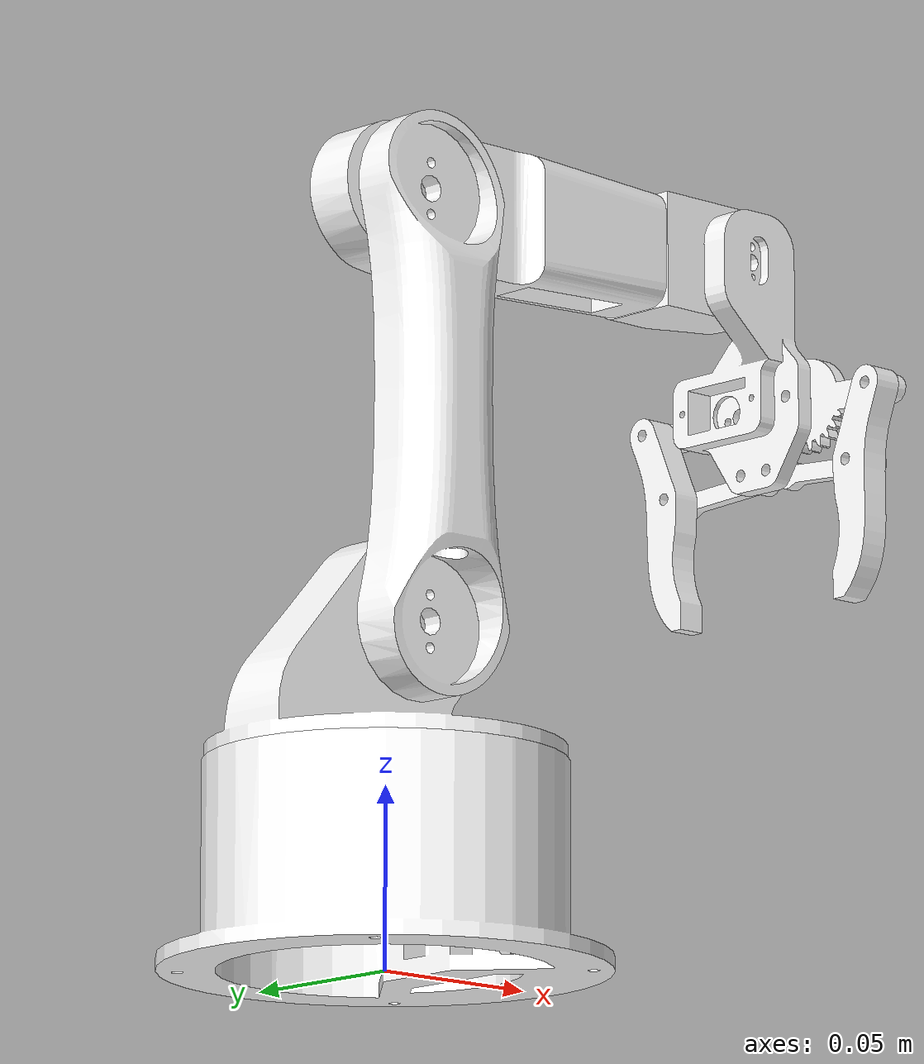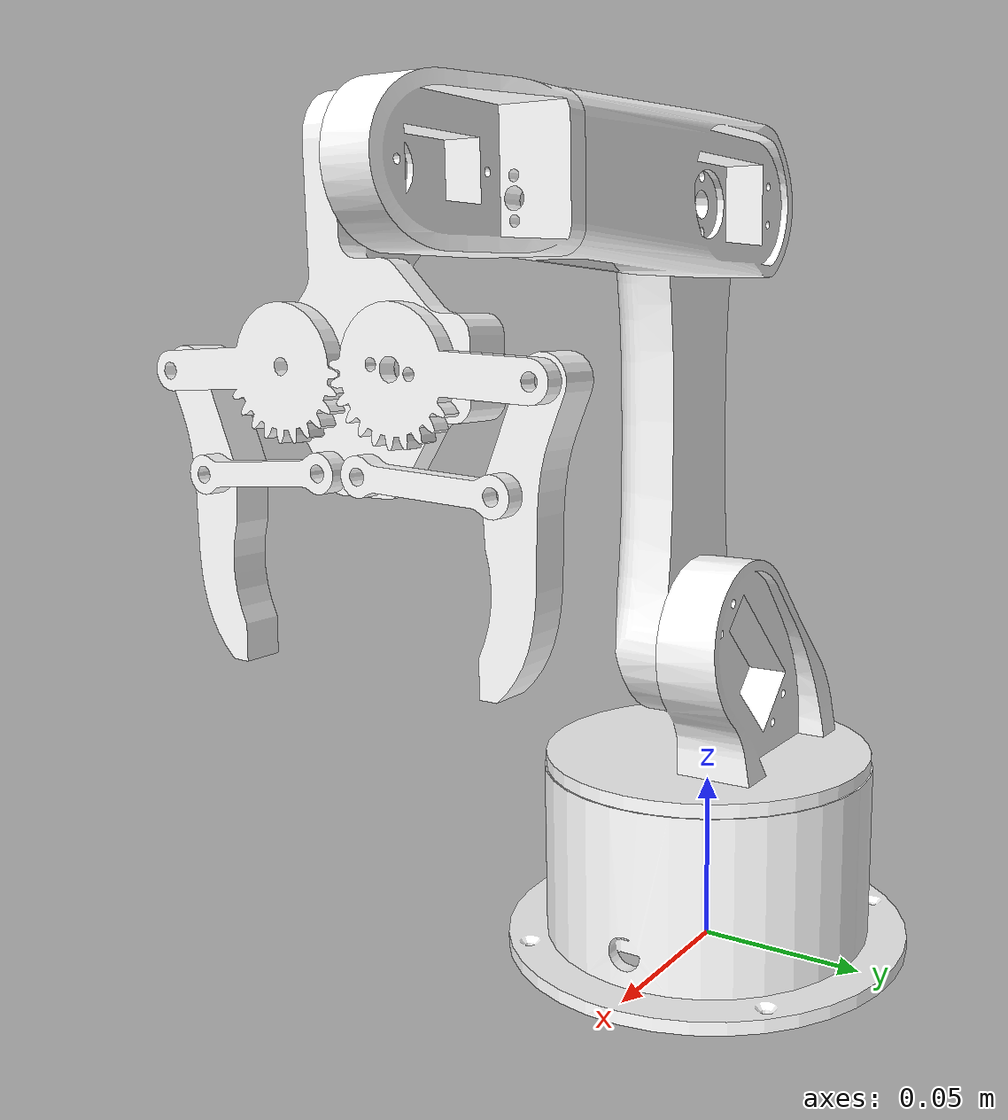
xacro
<?xml version="1.0" encoding="utf-8"?>

<robot
  name="mocha" xmlns:xacro="http://ros.org/wiki/xacro">
  <link name="world"/>
    <joint name="base_joint" type="fixed">
    <parent link="world"/>
    <child link="base_link"/>
    <origin rpy="0 0 0" xyz="0.0 0.0 0.0"/>
    </joint>
  <link
    name="base_link">
    <inertial>
      <origin
        xyz="0.000117199417675082 -3.05975474124143E-09 0.0223035723181941"
        rpy="0 0 0" />
      <mass
        value="0.0979582534406825" />
      <inertia
        ixx="0.000130552228522341"
        ixy="-2.22674811046477E-11"
        ixz="3.99226744269731E-06"
        iyy="0.000140414184143385"
        iyz="4.13550991731117E-13"
        izz="0.000212143374979004" />
    </inertial>
    <visual>
      <origin
        xyz="0 0 0"
        rpy="0 0 0" />
      <geometry>
        <mesh
          filename="package://mocha/meshes/base_link.STL" />
      </geometry>
      <material
        name="">
        <color
          rgba="1 1 1 1" />
      </material>
    </visual>
    <collision>
      <origin
        xyz="0 0 0"
        rpy="0 0 0" />
      <geometry>
        <mesh
          filename="package://mocha/meshes/base_link.STL" />
      </geometry>
    </collision>
  </link>
  <link
    name="waist">
    <inertial>
      <origin
        xyz="0.00169136098501852 0.00660819498532267 0.0133947545307733"
        rpy="0 0 0" />
      <mass
        value="0.0684427129118219" />
      <inertia
        ixx="4.56870454663408E-05"
        ixy="-3.78506837372467E-07"
        ixz="-6.20385180122017E-06"
        iyy="5.87238842271773E-05"
        iyz="-5.19129521124936E-06"
        izz="5.50839190250212E-05" />
    </inertial>
    <visual>
      <origin
        xyz="0 0 0"
        rpy="0 0 0" />
      <geometry>
        <mesh
          filename="package://mocha/meshes/waist.STL" />
      </geometry>
      <material
        name="">
        <color
          rgba="1 1 1 1" />
      </material>
    </visual>
    <collision>
      <origin
        xyz="0 0 0"
        rpy="0 0 0" />
      <geometry>
        <mesh
          filename="package://mocha/meshes/waist.STL" />
      </geometry>
    </collision>
  </link>
  <joint
    name="waist_joint"
    type="revolute">
    <origin
      xyz="0 0 0.06"
      rpy="0 0 0" />
    <parent
      link="base_link" />
    <child
      link="waist" />
    <axis
      xyz="0 0 1" />
    <limit
      lower="-1.57"
      upper="1.57"
      effort="0.5"
      velocity="2" />
  </joint>
  <link
    name="lower_arm">
    <inertial>
      <origin
        xyz="3.93901868173032E-07 0.0592049065989172 0.00178916982484342"
        rpy="0 0 0" />
      <mass
        value="0.0651630231570887" />
      <inertia
        ixx="0.0001091601766917"
        ixy="1.57817877665133E-12"
        ixz="-1.63546197405558E-10"
        iyy="9.28177418562022E-06"
        iyz="2.43213344379075E-07"
        izz="0.000114063850988314" />
    </inertial>
    <visual>
      <origin
        xyz="0 0 0"
        rpy="0 0 0" />
      <geometry>
        <mesh
          filename="package://mocha/meshes/lower_arm.STL" />
      </geometry>
      <material
        name="">
        <color
          rgba="1 1 1 1" />
      </material>
    </visual>
    <collision>
      <origin
        xyz="0 0 0"
        rpy="0 0 0" />
      <geometry>
        <mesh
          filename="package://mocha/meshes/lower_arm.STL" />
      </geometry>
    </collision>
  </link>
  <joint
    name="lower_arm_joint"
    type="revolute">
    <origin
      xyz="0.014 -0.002 0.036"
      rpy="1.5708 0 0" />
    <parent
      link="waist" />
    <child
      link="lower_arm" />
    <axis
      xyz="0 0 -1" />
    <limit
      lower="-1.57"
      upper="1.57"
      effort="0.5"
      velocity="2" />
  </joint>
  <link
    name="upper_arm">
    <inertial>
      <origin
        xyz="2.73149762194391E-05 -0.0392975972882241 -0.0134097745057252"
        rpy="0 0 0" />
      <mass
        value="0.0516349186566131" />
      <inertia
        ixx="5.57007690316697E-05"
        ixy="7.13258826752884E-08"
        ixz="-1.33389234030937E-10"
        iyy="9.57834353936765E-06"
        iyz="-2.93374413537984E-07"
        izz="5.94244390323794E-05" />
    </inertial>
    <visual>
      <origin
        xyz="0 0 0"
        rpy="0 0 0" />
      <geometry>
        <mesh
          filename="package://mocha/meshes/upper_arm.STL" />
      </geometry>
      <material
        name="">
        <color
          rgba="1 1 1 1" />
      </material>
    </visual>
    <collision>
      <origin
        xyz="0 0 0"
        rpy="0 0 0" />
      <geometry>
        <mesh
          filename="package://mocha/meshes/upper_arm.STL" />
      </geometry>
    </collision>
  </link>
  <joint
    name="upper_arm_joint"
    type="revolute">
    <origin
      xyz="0 0.12 0"
      rpy="0 0 1.5708" />
    <parent
      link="lower_arm" />
    <child
      link="upper_arm" />
    <axis
      xyz="0 0 -1" />
    <limit
      lower="-1.57"
      upper="1.57"
      effort="0.5"
      velocity="2" />
  </joint>
  <link
    name="wrist">
    <inertial>
      <origin
        xyz="-0.000251495550924491 -0.0083404809422172 0.107614818148418"
        rpy="0 0 0" />
      <mass
        value="0.0171876871003583" />
      <inertia
        ixx="4.13711327481054E-06"
        ixy="4.3006748459359E-09"
        ixz="1.26235492993703E-08"
        iyy="5.26929296743607E-06"
        iyz="-6.19224470166822E-07"
        izz="2.72952486208993E-06" />
    </inertial>
    <visual>
      <origin
        xyz="0 0 0"
        rpy="0 0 0" />
      <geometry>
        <mesh
          filename="package://mocha/meshes/wrist.STL" />
      </geometry>
      <material
        name="">
        <color
          rgba="1 1 1 1" />
      </material>
    </visual>
    <collision>
      <origin
        xyz="0 0 0"
        rpy="0 0 0" />
      <geometry>
        <mesh
          filename="package://mocha/meshes/wrist.STL" />
      </geometry>
    </collision>
  </link>
  <joint
    name="wrist_joint"
    type="revolute">
    <origin
      xyz="0 0 0"
      rpy="1.5708 0 0" />
    <parent
      link="upper_arm" />
    <child
      link="wrist" />
    <axis
      xyz="0 0 -1" />
    <limit
      lower="-1.57"
      upper="1.57"
      effort="0.5"
      velocity="2" />
  </joint>
  <link
    name="gripper_base">
    <inertial>
      <origin
        xyz="-0.0235511395842871 -0.00581676654887205 -0.00697660952907593"
        rpy="0 0 0" />
      <mass
        value="0.016035839168366" />
      <inertia
        ixx="2.61166695995785E-06"
        ixy="-1.39141263089559E-06"
        ixz="-1.45711892942644E-06"
        iyy="8.27807706460361E-06"
        iyz="-3.57354311122567E-07"
        izz="7.39239283095659E-06" />
    </inertial>
    <visual>
      <origin
        xyz="0 0 0"
        rpy="0 0 0" />
      <geometry>
        <mesh
          filename="package://mocha/meshes/gripper_base.STL" />
      </geometry>
      <material
        name="">
        <color
          rgba="1 1 1 1" />
      </material>
    </visual>
    <collision>
      <origin
        xyz="0 0 0"
        rpy="0 0 0" />
      <geometry>
        <mesh
          filename="package://mocha/meshes/gripper_base.STL" />
      </geometry>
    </collision>
  </link>
  <joint
    name="gripper_base_joint"
    type="revolute">
    <origin
      xyz="-0.0003 0.0055 0.11815"
      rpy="-1.5708 0 0" />
    <parent
      link="wrist" />
    <child
      link="gripper_base" />
    <axis
      xyz="0 0 1" />
    <limit
      lower="0"
      upper="3.14"
      effort="0.5"
      velocity="2" />
  </joint>
  <link
    name="right_gear">
    <inertial>
      <origin
        xyz="0.000862162528650318 0.00554450246517772 0.002"
        rpy="0 0 0" />
      <mass
        value="0.00269444555032233" />
      <inertia
        ixx="3.71793221229667E-07"
        ixy="-3.66151898287318E-09"
        ixz="-3.11247770814466E-22"
        iyy="9.15764277476901E-08"
        iyz="-4.18219490705315E-22"
        izz="4.56184460843164E-07" />
    </inertial>
    <visual>
      <origin
        xyz="0 0 0"
        rpy="0 0 0" />
      <geometry>
        <mesh
          filename="package://mocha/meshes/right_gear.STL" />
      </geometry>
      <material
        name="">
        <color
          rgba="1 1 1 1" />
      </material>
    </visual>
    <collision>
      <origin
        xyz="0 0 0"
        rpy="0 0 0" />
      <geometry>
        <mesh
          filename="package://mocha/meshes/right_gear.STL" />
      </geometry>
    </collision>
  </link>
  <joint
    name="right_gear_joint"
    type="revolute">
    <origin
      xyz="-0.038 -0.0215 0.004"
      rpy="1.5708 0 3.1416" />
    <parent
      link="gripper_base" />
    <child
      link="right_gear" />
    <axis
      xyz="0 0 -1" />
    <limit
      lower="0"
      upper="3.14"
      effort="0.5"
      velocity="2" />
    <mimic
      joint="left_gear_joint"
      multiplier="1"
      offset="0" />
  </joint>
  <link
    name="right_finger">
    <inertial>
      <origin
        xyz="0.0267479392094104 -0.00529029293468648 0.00825002259150889"
        rpy="0 0 0" />
      <mass
        value="0.00550542078574704" />
      <inertia
        ixx="1.15006391171339E-07"
        ixy="1.91197506802569E-07"
        ixz="-1.71052844021085E-12"
        iyy="1.69947685318375E-06"
        iyz="1.42084945996662E-11"
        izz="1.74818882959069E-06" />
    </inertial>
    <visual>
      <origin
        xyz="0 0 0"
        rpy="0 0 0" />
      <geometry>
        <mesh
          filename="package://mocha/meshes/right_finger.STL" />
      </geometry>
      <material
        name="">
        <color
          rgba="1 1 1 1" />
      </material>
    </visual>
    <collision>
      <origin
        xyz="0 0 0"
        rpy="0 0 0" />
      <geometry>
        <mesh
          filename="package://mocha/meshes/right_finger.STL" />
      </geometry>
    </collision>
  </link>
  <joint
    name="right_finger_joint"
    type="revolute">
    <origin
      xyz="0.0014378 0.030716 0"
      rpy="0 0 0" />
    <parent
      link="right_gear" />
    <child
      link="right_finger" />
    <axis
      xyz="0 0 -1" />
    <limit
      lower="0"
      upper="3.14"
      effort="0.5"
      velocity="2" />
    <mimic
      joint="left_gear_joint"
      multiplier="-1"
      offset="0" />
  </joint>
  <link
    name="left_gear">
    <inertial>
      <origin
        xyz="0.000868914166758522 -0.00563101926893944 -0.002"
        rpy="0 0 0" />
      <mass
        value="0.00261717686273073" />
      <inertia
        ixx="3.70848537895313E-07"
        ixy="3.28405598542026E-09"
        ixz="-3.23827368834952E-22"
        iyy="9.12164029816256E-08"
        iyz="-4.58013781424372E-22"
        izz="4.55085802576324E-07" />
    </inertial>
    <visual>
      <origin
        xyz="0 0 0"
        rpy="0 0 0" />
      <geometry>
        <mesh
          filename="package://mocha/meshes/left_gear.STL" />
      </geometry>
      <material
        name="">
        <color
          rgba="1 1 1 1" />
      </material>
    </visual>
    <collision>
      <origin
        xyz="0 0 0"
        rpy="0 0 0" />
      <geometry>
        <mesh
          filename="package://mocha/meshes/left_gear.STL" />
      </geometry>
    </collision>
  </link>
  <joint
    name="left_gear_joint"
    type="revolute">
    <origin
      xyz="-0.038 -0.0175 -0.0229"
      rpy="1.5708 0 3.1416" />
    <parent
      link="gripper_base" />
    <child
      link="left_gear" />
    <axis
      xyz="0 0 1" />
    <limit
      lower="0"
      upper="3.14"
      effort="0.5"
      velocity="2" />
  </joint>
  <link
    name="left_finger">
    <inertial>
      <origin
        xyz="0.0264952988065887 0.00643728187189994 0.00824997740849176"
        rpy="0 0 0" />
      <mass
        value="0.00550542088206421" />
      <inertia
        ixx="1.34397312995325E-07"
        ixy="-2.58659921284749E-07"
        ixz="1.09467430768046E-12"
        iyy="1.68008574838117E-06"
        iyz="1.42676907042123E-11"
        izz="1.74818864591621E-06" />
    </inertial>
    <visual>
      <origin
        xyz="0 0 0"
        rpy="0 0 0" />
      <geometry>
        <mesh
          filename="package://mocha/meshes/left_finger.STL" />
      </geometry>
      <material
        name="">
        <color
          rgba="1 1 1 1" />
      </material>
    </visual>
    <collision>
      <origin
        xyz="0 0 0"
        rpy="0 0 0" />
      <geometry>
        <mesh
          filename="package://mocha/meshes/left_finger.STL" />
      </geometry>
    </collision>
  </link>
  <joint
    name="left_finger_joint"
    type="revolute">
    <origin
      xyz="0.0014378 -0.030716 -0.004"
      rpy="0 0 0" />
    <parent
      link="left_gear" />
    <child
      link="left_finger" />
    <axis
      xyz="0 0 -1" />
    <limit
      lower="0"
      upper="3.14"
      effort="0.5"
      velocity="2" />
    <mimic
      joint="left_gear_joint"
      multiplier="1"
      offset="0" />
  </joint>
  <link
    name="right_link">
    <inertial>
      <origin
        xyz="0.00100774826959747 0.0154672054174738 0.00200000000000006"
        rpy="0 0 0" />
      <mass
        value="0.000814737661448385" />
      <inertia
        ixx="1.04552091697251E-07"
        ixy="-6.57056810897569E-09"
        ixz="-1.39427938070675E-23"
        iyy="4.1332522394072E-09"
        iyz="-1.17131498885849E-22"
        izz="1.06512710172796E-07" />
    </inertial>
    <visual>
      <origin
        xyz="0 0 0"
        rpy="0 0 0" />
      <geometry>
        <mesh
          filename="package://mocha/meshes/right_link.STL" />
      </geometry>
      <material
        name="">
        <color
          rgba="1 1 1 1" />
      </material>
    </visual>
    <collision>
      <origin
        xyz="0 0 0"
        rpy="0 0 0" />
      <geometry>
        <mesh
          filename="package://mocha/meshes/right_link.STL" />
      </geometry>
    </collision>
  </link>
  <joint
    name="right_link_joint"
    type="revolute">
    <origin
      xyz="-0.058 -0.0215 -0.004"
      rpy="1.5708 0 3.1416" />
    <parent
      link="gripper_base" />
    <child
      link="right_link" />
    <axis
      xyz="0 0 -1" />
    <limit
      lower="0"
      upper="3.14"
      effort="0.5"
      velocity="2" />
    <mimic
      joint="left_gear_joint"
      multiplier="1"
      offset="0" />
  </joint>
  <link
    name="left_link">
    <inertial>
      <origin
        xyz="0.000830638506810533 -0.0154777272126691 0.002"
        rpy="0 0 0" />
      <mass
        value="0.000814737661448385" />
      <inertia
        ixx="1.04689343606938E-07"
        ixy="5.41948795586974E-09"
        ixz="1.26001100056874E-24"
        iyy="3.99600032972003E-09"
        iyz="-1.15348736080485E-22"
        izz="1.06512710172796E-07" />
    </inertial>
    <visual>
      <origin
        xyz="0 0 0"
        rpy="0 0 0" />
      <geometry>
        <mesh
          filename="package://mocha/meshes/left_link.STL" />
      </geometry>
      <material
        name="">
        <color
          rgba="1 1 1 1" />
      </material>
    </visual>
    <collision>
      <origin
        xyz="0 0 0"
        rpy="0 0 0" />
      <geometry>
        <mesh
          filename="package://mocha/meshes/left_link.STL" />
      </geometry>
    </collision>
  </link>
  <joint
    name="left_link_joint"
    type="revolute">
    <origin
      xyz="-0.058 -0.0215 -0.014"
      rpy="1.5708 0 3.1416" />
    <parent
      link="gripper_base" />
    <child
      link="left_link" />
    <axis
      xyz="0 0 -1" />
    <limit
      lower="0"
      upper="3.14"
      effort="0.5"
      velocity="2" />
    <mimic
      joint="left_gear_joint"
      multiplier="-1"
      offset="0" />
  </joint>

 <gazebo>
        <plugin name="gazebo_ros_control" filename="libgazebo_ros_control.so">
            <robotSimType>gazebo_ros_control/DefaultRobotHWSim</robotSimType>
            <legacyModeNS>true</legacyModeNS>
            <robotNamespace>/mocha</robotNamespace>
        </plugin>

        <plugin name="right_gear_joint_mimic_left_gear_joint" filename="libroboticsgroup_gazebo_mimic_joint_plugin.so">
          <joint>left_gear_joint</joint>
          <mimicJoint>right_gear_joint</mimicJoint>
          <multiplier>-1.0</multiplier>
          <offset>0</offset>
          <maxEffort>0.5</maxEffort>
          <robotNamespace>/mocha</robotNamespace>
        </plugin>

  </gazebo>

  <transmission name="transmission_waist_joint">
          <type>transmission_interface/SimpleTransmission</type>
          <joint name="waist_joint">
              <hardwareInterface>hardware_interface/PositionJointInterface</hardwareInterface>
          </joint>
          <actuator name="motor_waist_joint">
              <hardwareInterface>hardware_interface/PositionJointInterface</hardwareInterface>
              <mechanicalReduction>1</mechanicalReduction>
          </actuator>
  </transmission>

  <transmission name="transmission_lower_arm_joint">
          <type>transmission_interface/SimpleTransmission</type>
          <joint name="lower_arm_joint">
              <hardwareInterface>hardware_interface/PositionJointInterface</hardwareInterface>
          </joint>
          <actuator name="motor_lower_arm_joint">
              <hardwareInterface>hardware_interface/PositionJointInterface</hardwareInterface>
              <mechanicalReduction>1</mechanicalReduction>
          </actuator>
  </transmission>

  <transmission name="transmission_upper_arm_joint">
          <type>transmission_interface/SimpleTransmission</type>
          <joint name="upper_arm_joint">
              <hardwareInterface>hardware_interface/PositionJointInterface</hardwareInterface>
          </joint>
          <actuator name="motor_upper_arm_joint">
              <hardwareInterface>hardware_interface/PositionJointInterface</hardwareInterface>
              <mechanicalReduction>1</mechanicalReduction>
          </actuator>
  </transmission>

  <transmission name="transmission_wrist_joint">
          <type>transmission_interface/SimpleTransmission</type>
          <joint name="wrist_joint">
              <hardwareInterface>hardware_interface/PositionJointInterface</hardwareInterface>
          </joint>
          <actuator name="motor_wrist_joint">
              <hardwareInterface>hardware_interface/PositionJointInterface</hardwareInterface>
              <mechanicalReduction>1</mechanicalReduction>
          </actuator>
  </transmission>

  <transmission name="transmission_gripper_base_joint">
          <type>transmission_interface/SimpleTransmission</type>
          <joint name="gripper_base_joint">
              <hardwareInterface>hardware_interface/PositionJointInterface</hardwareInterface>
          </joint>
          <actuator name="motor_gripper_base_joint">
              <hardwareInterface>hardware_interface/PositionJointInterface</hardwareInterface>
              <mechanicalReduction>1</mechanicalReduction>
          </actuator>
  </transmission>

  <transmission name="transmission_left_gear_joint">
          <type>transmission_interface/SimpleTransmission</type>
          <joint name="left_gear_joint">
              <hardwareInterface>hardware_interface/PositionJointInterface</hardwareInterface>
          </joint>
          <actuator name="motor_left_gear_joint">
              <hardwareInterface>hardware_interface/PositionJointInterface</hardwareInterface>
              <mechanicalReduction>1</mechanicalReduction>
          </actuator>
  </transmission>

</robot>
